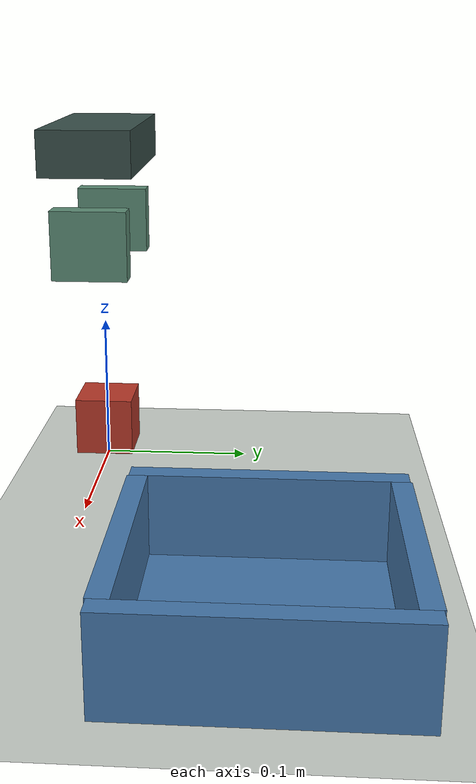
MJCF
<mujoco model="VL01 educational Cartesian gripper">
  <compiler angle="radian" autolimits="true"/>
  <option timestep="0.002" gravity="0 0 -9.81" integrator="implicitfast"/>
  <visual><global offwidth="960" offheight="640"/><headlight ambient="0.4 0.4 0.4" diffuse="0.7 0.7 0.7"/></visual>
  <default>
    <joint damping="3" armature="0.01"/>
    <geom friction="1.2 0.005 0.0001" condim="4" solref="0.008 1" solimp="0.95 0.99 0.001"/>
  </default>
  <asset>
    <texture name="ground" type="2d" builtin="checker" rgb1=".83 .85 .83" rgb2=".76 .79 .76" width="256" height="256"/>
    <material name="ground" texture="ground" texrepeat="5 5" reflectance=".1"/>
  </asset>
  <worldbody>
    <light pos="0 -1 2" dir="0 0 -1" directional="true"/>
    <camera name="overview" pos=".7 -.85 .7" xyaxes=".77 .64 0 -.32 .38 .87"/>
    <geom name="floor" type="plane" size="1 1 .01" material="ground"/>
    <body name="bin" pos=".24 .12 0">
      <geom name="bin_floor" type="box" pos="0 0 .003" size=".08 .08 .003" rgba=".27 .47 .67 1"/>
      <geom type="box" pos="-.075 0 .028" size=".006 .08 .028" rgba=".27 .47 .67 1"/>
      <geom type="box" pos=".075 0 .028" size=".006 .08 .028" rgba=".27 .47 .67 1"/>
      <geom type="box" pos="0 -.075 .028" size=".069 .006 .028" rgba=".27 .47 .67 1"/>
      <geom type="box" pos="0 .075 .028" size=".069 .006 .028" rgba=".27 .47 .67 1"/>
    </body>
    <body name="cube" pos="0 0 .026">
      <freejoint/>
      <geom name="cube_geom" type="box" size=".02 .02 .02" mass=".05" rgba=".72 .22 .16 1"/>
    </body>
    <body name="hand" pos="0 0 .16" gravcomp="1">
      <joint name="x" type="slide" axis="1 0 0" range="-.2 .5"/>
      <joint name="y" type="slide" axis="0 1 0" range="-.25 .35"/>
      <joint name="z" type="slide" axis="0 0 1" range="-.14 .2"/>
      <geom name="palm" type="box" pos="0 0 .065" size=".065 .03 .015" mass=".2" rgba=".22 .31 .29 1"/>
      <site name="grip_center" size=".004" rgba="1 .7 .2 1"/>
      <body name="left" pos="-.05 0 0" gravcomp="1">
        <joint name="left_slide" type="slide" axis="1 0 0" range="0 .035"/>
        <geom name="left_pad" type="box" pos="0 0 .005" size=".008 .025 .023" mass=".04" rgba=".36 .55 .46 1"/>
      </body>
      <body name="right" pos=".05 0 0" gravcomp="1">
        <joint name="right_slide" type="slide" axis="-1 0 0" range="0 .035"/>
        <geom name="right_pad" type="box" pos="0 0 .005" size=".008 .025 .023" mass=".04" rgba=".36 .55 .46 1"/>
      </body>
    </body>
  </worldbody>
  <actuator>
    <position name="x_target" joint="x" kp="2000" kv="90" ctrlrange="-.2 .5" forcerange="-100 100"/>
    <position name="y_target" joint="y" kp="2000" kv="90" ctrlrange="-.25 .35" forcerange="-100 100"/>
    <position name="z_target" joint="z" kp="2000" kv="90" ctrlrange="-.14 .2" forcerange="-100 100"/>
    <position name="left_target" joint="left_slide" kp="300" kv="3" ctrlrange="0 .035" forcerange="-12 12"/>
    <position name="right_target" joint="right_slide" kp="300" kv="3" ctrlrange="0 .035" forcerange="-12 12"/>
  </actuator>
</mujoco>
